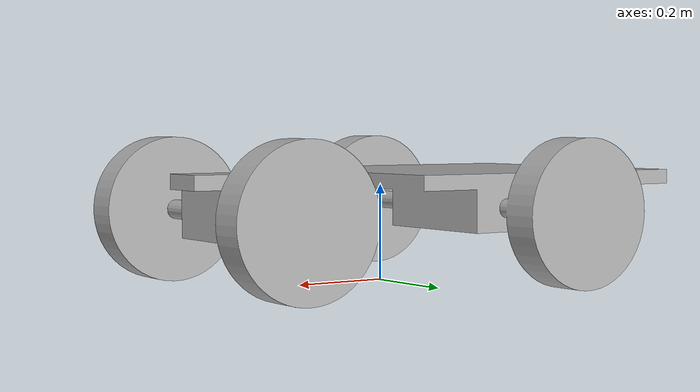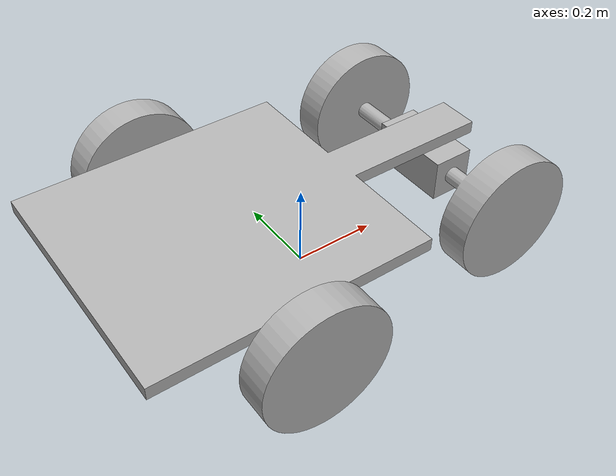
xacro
<?xml version="1.0" ?>
<robot name="steer_wheel_bot" xmlns:xacro="http://www.ros.org/wiki/xacro">

<xacro:include filename="$(find steer_wheel_bot_description)/urdf/materials.xacro" />
<xacro:include filename="$(find steer_wheel_bot_description)/urdf/steer_wheel_bot.trans" />
<xacro:include filename="$(find steer_wheel_bot_description)/urdf/steer_wheel_bot.gazebo" />
<link name="base_link">
  <inertial>
    <origin rpy="0 0 0" xyz="-0.13054823554116107 0.0006988780250230332 0.20030576446285836"/>
    <mass value="148.93811972031833"/>
    <inertia ixx="3.328462" ixy="0.0" ixz="-0.173886" iyy="8.849983" iyz="0.0" izz="11.888618"/>
  </inertial>
  <visual>
    <origin rpy="0 0 0" xyz="0 0 0"/>
    <geometry>
      <mesh filename="package://steer_wheel_bot_description/meshes/base_link.stl" scale="0.001 0.001 0.001"/>
    </geometry>
    <material name="silver"/>
  </visual>
  <collision>
    <origin rpy="0 0 0" xyz="0 0 0"/>
    <geometry>
      <mesh filename="package://steer_wheel_bot_description/meshes/base_link.stl" scale="0.001 0.001 0.001"/>
    </geometry>
  </collision>
</link>

<link name="rear_wheel_1">
  <inertial>
    <origin rpy="0 0 0" xyz="-2.482659312574853e-07 -1.219749772140427e-07 -1.392503667374534e-07"/>
    <mass value="89.64456097202134"/>
    <inertia ixx="11.670875" ixy="-0.0" ixz="0.0" iyy="0.937649" iyz="0.0" izz="11.670875"/>
  </inertial>
  <visual>
    <origin rpy="0 0 0" xyz="0.21866 -0.000699 -0.149431"/>
    <geometry>
      <mesh filename="package://steer_wheel_bot_description/meshes/rear_wheel_1.stl" scale="0.001 0.001 0.001"/>
    </geometry>
    <material name="silver"/>
  </visual>
  <collision>
    <origin rpy="0 0 0" xyz="0.21866 -0.000699 -0.149431"/>
    <geometry>
      <mesh filename="package://steer_wheel_bot_description/meshes/rear_wheel_1.stl" scale="0.001 0.001 0.001"/>
    </geometry>
  </collision>
</link>

<link name="front_steer_1">
  <inertial>
    <origin rpy="0 0 0" xyz="3.710130779821519e-07 2.98775194296913e-07 -0.05000013925036709"/>
    <mass value="13.72707981354561"/>
    <inertia ixx="0.057197" ixy="0.006741" ixz="0.0" iyy="0.027218" iyz="0.0" izz="0.058643"/>
  </inertial>
  <visual>
    <origin rpy="0 0 0" xyz="-0.363564 0.020277 -0.199431"/>
    <geometry>
      <mesh filename="package://steer_wheel_bot_description/meshes/front_steer_1.stl" scale="0.001 0.001 0.001"/>
    </geometry>
    <material name="silver"/>
  </visual>
  <collision>
    <origin rpy="0 0 0" xyz="-0.363564 0.020277 -0.199431"/>
    <geometry>
      <mesh filename="package://steer_wheel_bot_description/meshes/front_steer_1.stl" scale="0.001 0.001 0.001"/>
    </geometry>
  </collision>
</link>

<link name="front_wheel_1">
  <inertial>
    <origin rpy="0 0 0" xyz="3.7101307803766304e-07 2.987751943316075e-07 -1.3925036715378702e-07"/>
    <mass value="87.67164078556695"/>
    <inertia ixx="6.081066" ixy="1.103493" ixz="-0.0" iyy="1.173985" iyz="0.0" izz="6.317796"/>
  </inertial>
  <visual>
    <origin rpy="0 0 0" xyz="-0.363564 0.020277 -0.149431"/>
    <geometry>
      <mesh filename="package://steer_wheel_bot_description/meshes/front_wheel_1.stl" scale="0.001 0.001 0.001"/>
    </geometry>
    <material name="silver"/>
  </visual>
  <collision>
    <origin rpy="0 0 0" xyz="-0.363564 0.020277 -0.149431"/>
    <geometry>
      <mesh filename="package://steer_wheel_bot_description/meshes/front_wheel_1.stl" scale="0.001 0.001 0.001"/>
    </geometry>
  </collision>
</link>

<joint name="rear_wheel" type="continuous">
  <origin rpy="0 0 0" xyz="-0.21866 0.000699 0.149431"/>
  <parent link="base_link"/>
  <child link="rear_wheel_1"/>
  <axis xyz="0.0 1.0 -0.0"/>
</joint>

<joint name="front_steer" type="revolute">
  <origin rpy="0 0 0" xyz="0.363564 -0.020277 0.199431"/>
  <parent link="base_link"/>
  <child link="front_steer_1"/>
  <axis xyz="-0.0 -0.0 -1.0"/>
  <limit effort="100" lower="-0.261799" upper="0.261799" velocity="100"/>
</joint>

<joint name="front_wheel" type="continuous">
  <origin rpy="0 0 0" xyz="0.0 0.0 -0.05"/>
  <parent link="front_steer_1"/>
  <child link="front_wheel_1"/>
  <axis xyz="-0.209756 0.977754 -0.0"/>
</joint>

</robot>

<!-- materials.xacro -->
<robot name="steer_wheel_bot" xmlns:xacro="http://www.ros.org/wiki/xacro" >

<material name="silver">
  <color rgba="0.700 0.700 0.700 1.000"/>
</material>

</robot>

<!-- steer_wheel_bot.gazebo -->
<robot name="steer_wheel_bot" xmlns:xacro="http://www.ros.org/wiki/xacro" >

<xacro:property name="body_color" value="Gazebo/Silver" />

<xacro:property name="robot_namespace" value="/steer_wheel_bot"/>

  <!-- Gazebo plugins -->
  <gazebo>
    <!-- Load ros_control plugin -->
    <plugin name="gazebo_ros_control" filename="libgazebo_ros_control.so">
      <robotNamespace>${robot_namespace}</robotNamespace>
      <robotSimType>gazebo_ros_control/DefaultRobotHWSim</robotSimType>
      <legacyModeNS>false</legacyModeNS>
    </plugin>

    <!-- Load gazebo_ros plugin. Publish passive (non-actuated) joints from Gazebo -->
    <plugin name="gazebo_ros_joint_state_publisher" filename="libgazebo_ros_joint_state_publisher.so">
        <robotNamespace>${robot_namespace}</robotNamespace>
        <jointName>
            front_wheel_joint
        </jointName>
        <updateRate>50</updateRate>
        <alwaysOn>true</alwaysOn>
    </plugin>
  </gazebo>
<gazebo reference="base_link">
  <material>${body_color}</material>
  <mu1>0.2</mu1>
  <mu2>0.2</mu2>
  <selfCollide>true</selfCollide>
  <gravity>true</gravity>
</gazebo>

<gazebo reference="rear_wheel_1">
  <material>${body_color}</material>
  <mu1>0.2</mu1>
  <mu2>0.2</mu2>
  <selfCollide>true</selfCollide>
</gazebo>

<gazebo reference="front_steer_1">
  <material>${body_color}</material>
  <mu1>0.2</mu1>
  <mu2>0.2</mu2>
  <selfCollide>true</selfCollide>
</gazebo>

<gazebo reference="front_wheel_1">
  <material>${body_color}</material>
  <mu1>0.2</mu1>
  <mu2>0.2</mu2>
  <selfCollide>true</selfCollide>
</gazebo>

</robot>
